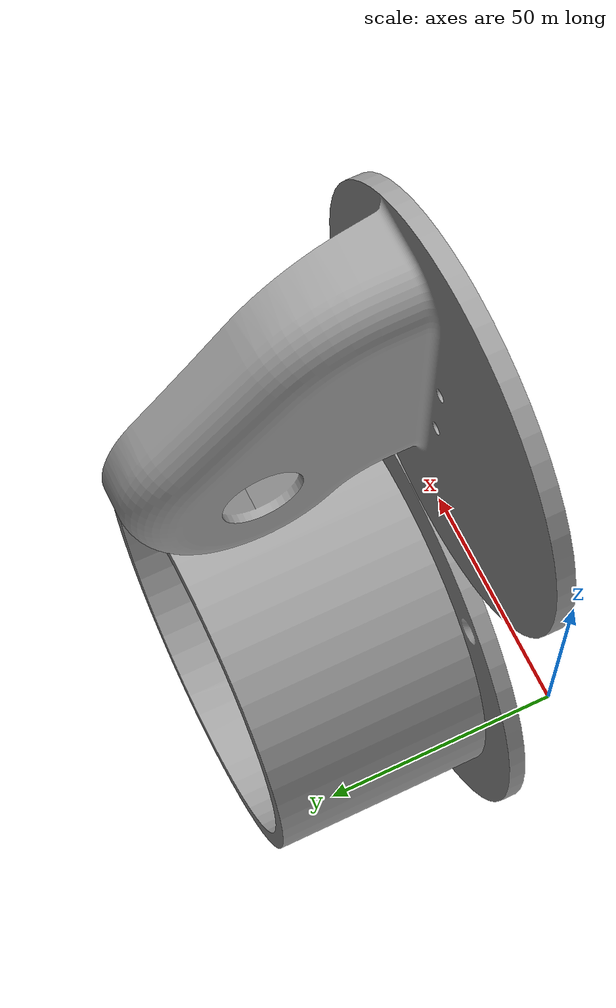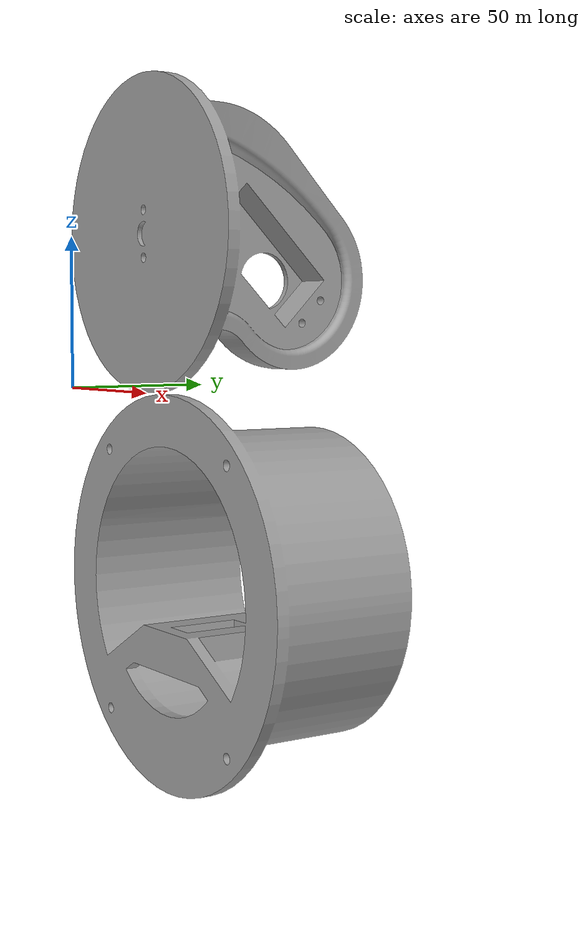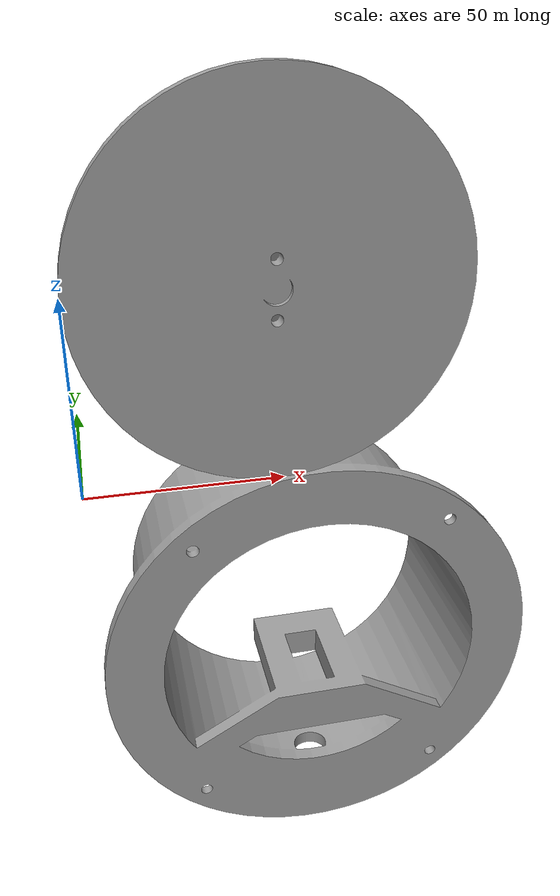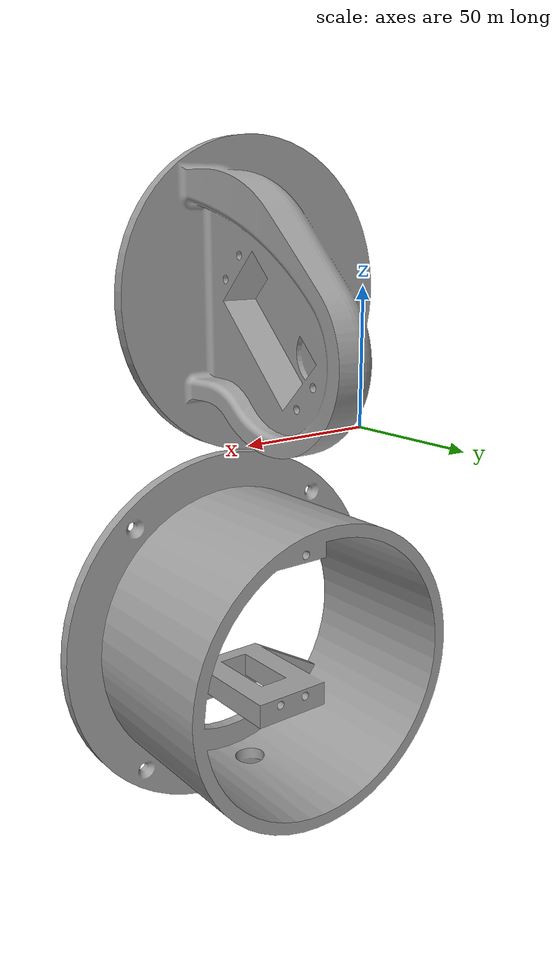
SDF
<?xml version="1.0" ?>
<!-- Generated using onshape-to-robot -->
<!-- Onshape document_id: dc649399d1e5c22b0b47fe9c -->
<sdf version="1.7">
  <model name="dumanjr">
    <!-- Link base -->
    <link name="base">
      <inertial>
        <pose>0.00140239 -0.0390551 0.026824 0 0 0</pose>
        <mass>1.99989</mass>
        <inertia>
          <ixx>0.00285053</ixx>
          <ixy>-7.11608e-10</ixy>
          <ixz>1.48443e-10</ixz>
          <iyy>0.0027243</iyy>
          <iyz>7.94782e-05</iyz>
          <izz>0.00434757</izz>
        </inertia>
      </inertial>
      <pose>0 0 0 0 -0 0</pose>
      <!-- Part base -->
      <visual name="base_visual_mesh_1">
        <pose relative_to="base">0.00140238 -0.0401521 0.00471794 -1.5708 -0 0</pose>
        <geometry>
          <mesh>
            <uri>model://duman_description/models/base.stl</uri>
          </mesh>
        </geometry>
        <material>
          <ambient>0.627451 0.627451 0.627451 1</ambient>
          <diffuse>0.627451 0.627451 0.627451 1</diffuse>
          <specular>0.1 0.1 0.1 1</specular>
          <emissive>0 0 0 0</emissive>
        </material>
      </visual>
      <collision name="base_collision_mesh_2">
        <pose relative_to="base">0.00140238 -0.0401521 0.00471794 -1.5708 -0 0</pose>
        <geometry>
          <mesh>
            <uri>model://duman_description/models/base.stl</uri>
          </mesh>
        </geometry>
      </collision>
    </link>
    <joint name="base_fixed_world" type="fixed">
      <parent>world</parent>
      <child>base</child>
    </joint>
    <!-- Link waist -->
    <link name="waist">
      <inertial>
        <pose>0.00749454 -0.00142948 -0.0193828 0 0 0</pose>
        <mass>0.0920595</mass>
        <inertia>
          <ixx>8.49408e-05</ixx>
          <ixy>3.1823e-07</ixy>
          <ixz>8.03715e-06</ixz>
          <iyy>6.28516e-05</iyy>
          <iyz>-8.4124e-06</iyz>
          <izz>7.51669e-05</izz>
        </inertia>
      </inertial>
      <pose relative_to="hip">0 0 0 0 -0 0</pose>
      <!-- Part waist -->
      <visual name="waist_visual_mesh_1">
        <pose relative_to="waist">0 0 6.93889e-18 3.14159 -9.5171e-34 -7.77831e-33</pose>
        <geometry>
          <mesh>
            <uri>model://duman_description/models/waist.stl</uri>
          </mesh>
        </geometry>
        <material>
          <ambient>0.627451 0.627451 0.627451 1</ambient>
          <diffuse>0.627451 0.627451 0.627451 1</diffuse>
          <specular>0.1 0.1 0.1 1</specular>
          <emissive>0 0 0 0</emissive>
        </material>
      </visual>
      <collision name="waist_collision_mesh_2">
        <pose relative_to="waist">0 0 6.93889e-18 3.14159 -9.5171e-34 -7.77831e-33</pose>
        <geometry>
          <mesh>
            <uri>model://duman_description/models/waist.stl</uri>
          </mesh>
        </geometry>
      </collision>
    </link>
    <!-- Link arm_01 -->
    <link name="arm_01">
      <inertial>
        <pose>1.41189e-07 0.0599998 -0.0077716 0 0 0</pose>
        <mass>0.0800817</mass>
        <inertia>
          <ixx>0.000129708</ixx>
          <ixy>6.23374e-10</ixy>
          <ixz>1.8766e-10</ixz>
          <iyy>1.15364e-05</iyy>
          <iyz>3.6199e-12</iyz>
          <izz>0.000135796</izz>
        </inertia>
      </inertial>
      <pose relative_to="shoulder">0 0 0 0 -0 0</pose>
      <!-- Part arm_01 -->
      <visual name="arm_01_visual_mesh_1">
        <pose relative_to="arm_01">0 0 -0.021 -1.5708 -0 0</pose>
        <geometry>
          <mesh>
            <uri>model://duman_description/models/arm_01.stl</uri>
          </mesh>
        </geometry>
        <material>
          <ambient>0.627451 0.627451 0.627451 1</ambient>
          <diffuse>0.627451 0.627451 0.627451 1</diffuse>
          <specular>0.1 0.1 0.1 1</specular>
          <emissive>0 0 0 0</emissive>
        </material>
      </visual>
      <collision name="arm_01_collision_mesh_2">
        <pose relative_to="arm_01">0 0 -0.021 -1.5708 -0 0</pose>
        <geometry>
          <mesh>
            <uri>model://duman_description/models/arm_01.stl</uri>
          </mesh>
        </geometry>
      </collision>
    </link>
    <!-- Link arm_02 -->
    <link name="arm_02">
      <inertial>
        <pose>0.041712 3.1608e-05 -0.00571994 0 0 0</pose>
        <mass>0.0588717</mass>
        <inertia>
          <ixx>1.09032e-05</ixx>
          <ixy>-8.66931e-08</ixy>
          <ixz>-5.03999e-07</ixz>
          <iyy>6.42501e-05</iyy>
          <iyz>-2.95898e-10</iyz>
          <izz>6.83293e-05</izz>
        </inertia>
      </inertial>
      <pose relative_to="elbow">0 0 0 0 -0 0</pose>
      <!-- Part arm_02 -->
      <visual name="arm_02_visual_mesh_1">
        <pose relative_to="arm_02">0.03475 0 0 1.5708 -5.82765e-33 8.38165e-31</pose>
        <geometry>
          <mesh>
            <uri>model://duman_description/models/arm_02.stl</uri>
          </mesh>
        </geometry>
        <material>
          <ambient>0.627451 0.627451 0.627451 1</ambient>
          <diffuse>0.627451 0.627451 0.627451 1</diffuse>
          <specular>0.1 0.1 0.1 1</specular>
          <emissive>0 0 0 0</emissive>
        </material>
      </visual>
      <collision name="arm_02_collision_mesh_2">
        <pose relative_to="arm_02">0.03475 0 0 1.5708 -5.82765e-33 8.38165e-31</pose>
        <geometry>
          <mesh>
            <uri>model://duman_description/models/arm_02.stl</uri>
          </mesh>
        </geometry>
      </collision>
    </link>
    <!-- Link arm_03 -->
    <link name="arm_03">
      <inertial>
        <pose>0.00504597 -0.00527098 -0.0178079 0 0 0</pose>
        <mass>0.0205879</mass>
        <inertia>
          <ixx>4.87479e-06</ixx>
          <ixy>-4.9857e-09</ixy>
          <ixz>-1.44426e-08</ixz>
          <iyy>6.25973e-06</iyy>
          <iyz>-7.21453e-07</iyz>
          <izz>3.26119e-06</izz>
        </inertia>
      </inertial>
      <pose relative_to="wrist_yaw">0 0 0 0 -0 0</pose>
      <!-- Part arm_03 -->
      <visual name="arm_03_visual_mesh_1">
        <pose relative_to="arm_03">0.005 0 0 3.14159 -1.15324e-32 -2.64041e-32</pose>
        <geometry>
          <mesh>
            <uri>model://duman_description/models/arm_03.stl</uri>
          </mesh>
        </geometry>
        <material>
          <ambient>0.627451 0.627451 0.627451 1</ambient>
          <diffuse>0.627451 0.627451 0.627451 1</diffuse>
          <specular>0.1 0.1 0.1 1</specular>
          <emissive>0 0 0 0</emissive>
        </material>
      </visual>
      <collision name="arm_03_collision_mesh_2">
        <pose relative_to="arm_03">0.005 0 0 3.14159 -1.15324e-32 -2.64041e-32</pose>
        <geometry>
          <mesh>
            <uri>model://duman_description/models/arm_03.stl</uri>
          </mesh>
        </geometry>
      </collision>
    </link>
    <!-- Link gripper_base -->
    <link name="gripper_base">
      <inertial>
        <pose>-0.0249279 0.00644035 0.00415755 0 0 0</pose>
        <mass>0.0200508</mass>
        <inertia>
          <ixx>4.12622e-06</ixx>
          <ixy>1.67598e-06</ixy>
          <ixz>2.23242e-06</ixz>
          <iyy>1.12602e-05</iyy>
          <iyz>-5.06163e-07</iyz>
          <izz>9.07212e-06</izz>
        </inertia>
      </inertial>
      <pose relative_to="wrist">0 0 0 0 -0 0</pose>
      <!-- Part gripper_base -->
      <visual name="gripper_base_visual_mesh_1">
        <pose relative_to="gripper_base">-0.0405 0.009 0.016 -1.5708 -1.5708 0</pose>
        <geometry>
          <mesh>
            <uri>model://duman_description/models/gripper_base.stl</uri>
          </mesh>
        </geometry>
        <material>
          <ambient>0.627451 0.627451 0.627451 1</ambient>
          <diffuse>0.627451 0.627451 0.627451 1</diffuse>
          <specular>0.1 0.1 0.1 1</specular>
          <emissive>0 0 0 0</emissive>
        </material>
      </visual>
      <collision name="gripper_base_collision_mesh_2">
        <pose relative_to="gripper_base">-0.0405 0.009 0.016 -1.5708 -1.5708 0</pose>
        <geometry>
          <mesh>
            <uri>model://duman_description/models/gripper_base.stl</uri>
          </mesh>
        </geometry>
      </collision>
    </link>
    <!-- Link part_1_gear_2 -->
    <link name="part_1_gear_2">
      <inertial>
        <pose>0.0055512 0.000581716 -0.002 0 0 0</pose>
        <mass>0.00322726</mass>
        <inertia>
          <ixx>1.12519e-07</ixx>
          <ixy>1.04215e-08</ixy>
          <ixz>5.72662e-39</ixz>
          <iyy>4.6086e-07</iyy>
          <iyz>-2.84694e-37</iyz>
          <izz>5.64773e-07</izz>
        </inertia>
      </inertial>
      <pose relative_to="grip1">0 0 0 0 -0 0</pose>
      <!-- Part part_1_gear_2 -->
      <visual name="part_1_gear_2_visual_mesh_1">
        <pose relative_to="part_1_gear_2">0 0 -0.002 -1.5708 -9.19794e-32 -2.46134e-30</pose>
        <geometry>
          <mesh>
            <uri>model://duman_description/models/part_1_gear_2.stl</uri>
          </mesh>
        </geometry>
        <material>
          <ambient>0.627451 0.627451 0.627451 1</ambient>
          <diffuse>0.627451 0.627451 0.627451 1</diffuse>
          <specular>0.1 0.1 0.1 1</specular>
          <emissive>0 0 0 0</emissive>
        </material>
      </visual>
      <collision name="part_1_gear_2_collision_mesh_2">
        <pose relative_to="part_1_gear_2">0 0 -0.002 -1.5708 -9.19794e-32 -2.46134e-30</pose>
        <geometry>
          <mesh>
            <uri>model://duman_description/models/part_1_gear_2.stl</uri>
          </mesh>
        </geometry>
      </collision>
    </link>
    <!-- Link gripper -->
    <link name="gripper">
      <inertial>
        <pose>0.0255267 -0.00336736 -0.00225 0 0 0</pose>
        <mass>0.00319331</mass>
        <inertia>
          <ixx>7.61928e-08</ixx>
          <ixy>1.94102e-07</ixy>
          <ixz>1.2539e-13</ixz>
          <iyy>9.47719e-07</iyy>
          <iyz>-1.62028e-13</iyz>
          <izz>1.01313e-06</izz>
        </inertia>
      </inertial>
      <pose relative_to="grip4">0 0 0 0 -0 0</pose>
      <!-- Part gripper -->
      <visual name="gripper_visual_mesh_1">
        <pose relative_to="gripper">0 1.38778e-17 0 -3.14159 -3.22792e-30 2.73328e-30</pose>
        <geometry>
          <mesh>
            <uri>model://duman_description/models/gripper.stl</uri>
          </mesh>
        </geometry>
        <material>
          <ambient>0.627451 0.627451 0.627451 1</ambient>
          <diffuse>0.627451 0.627451 0.627451 1</diffuse>
          <specular>0.1 0.1 0.1 1</specular>
          <emissive>0 0 0 0</emissive>
        </material>
      </visual>
      <collision name="gripper_collision_mesh_2">
        <pose relative_to="gripper">0 1.38778e-17 0 -3.14159 -3.22792e-30 2.73328e-30</pose>
        <geometry>
          <mesh>
            <uri>model://duman_description/models/gripper.stl</uri>
          </mesh>
        </geometry>
      </collision>
    </link>
    <!-- Joint from part_1_gear_2 to gripper -->
    <joint name="grip4" type="revolute">
      <pose relative_to="part_1_gear_2">0.03075 0 -0.004 1.71639e-15 -3.30798e-14 1.39819e-15</pose>
      <parent>part_1_gear_2</parent>
      <child>gripper</child>
      <axis>
        <xyz>0 0 1</xyz>
        <limit>
          <effort>10</effort>
          <velocity>10</velocity>
          <lower>-3.141592653589793</lower>
          <upper>3.141592653589793</upper>
        </limit>
        <dynamics>
          <friction>0.0</friction>
          <damping>0.0</damping>
        </dynamics>
      </axis>
    </joint>
    <!-- Joint from gripper_base to part_1_gear_2 -->
    <joint name="grip1" type="revolute">
      <pose relative_to="gripper_base">-0.038 0.014 0.0179 -1.5708 -1.39819e-15 3.14159</pose>
      <parent>gripper_base</parent>
      <child>part_1_gear_2</child>
      <axis>
        <xyz>0 0 1</xyz>
        <limit>
          <effort>10</effort>
          <velocity>10</velocity>
          <lower>-3.141592653589793</lower>
          <upper>3.141592653589793</upper>
        </limit>
        <dynamics>
          <friction>0.0</friction>
          <damping>0.0</damping>
        </dynamics>
      </axis>
    </joint>
    <!-- Link part_2_gear_2 -->
    <link name="part_2_gear_2">
      <inertial>
        <pose>0.00539171 -0.000565002 -0.002 0 0 0</pose>
        <mass>0.00332273</mass>
        <inertia>
          <ixx>1.12793e-07</ixx>
          <ixy>-1.01221e-08</ixy>
          <ixz>-3.19661e-39</ixz>
          <iyy>4.65036e-07</iyy>
          <iyz>8.4684e-38</iyz>
          <izz>5.68969e-07</izz>
        </inertia>
      </inertial>
      <pose relative_to="grip2">0 0 0 0 -0 0</pose>
      <!-- Part part_2_gear_2 -->
      <visual name="part_2_gear_2_visual_mesh_1">
        <pose relative_to="part_2_gear_2">0 0 -0.002 1.5708 -2.48157e-33 -8.99409e-30</pose>
        <geometry>
          <mesh>
            <uri>model://duman_description/models/part_2_gear_2.stl</uri>
          </mesh>
        </geometry>
        <material>
          <ambient>0.627451 0.627451 0.627451 1</ambient>
          <diffuse>0.627451 0.627451 0.627451 1</diffuse>
          <specular>0.1 0.1 0.1 1</specular>
          <emissive>0 0 0 0</emissive>
        </material>
      </visual>
      <collision name="part_2_gear_2_collision_mesh_2">
        <pose relative_to="part_2_gear_2">0 0 -0.002 1.5708 -2.48157e-33 -8.99409e-30</pose>
        <geometry>
          <mesh>
            <uri>model://duman_description/models/part_2_gear_2.stl</uri>
          </mesh>
        </geometry>
      </collision>
    </link>
    <!-- Link gripper_2 -->
    <link name="gripper_2">
      <inertial>
        <pose>0.0255267 0.00336736 -0.00225 0 0 0</pose>
        <mass>0.00319331</mass>
        <inertia>
          <ixx>7.61928e-08</ixx>
          <ixy>-1.94102e-07</ixy>
          <ixz>-1.2539e-13</ixz>
          <iyy>9.47719e-07</iyy>
          <iyz>-1.62028e-13</iyz>
          <izz>1.01313e-06</izz>
        </inertia>
      </inertial>
      <pose relative_to="grip3">0 0 0 0 -0 0</pose>
      <!-- Part gripper_2 -->
      <visual name="gripper_2_visual_mesh_1">
        <pose relative_to="gripper_2">0 0 -0.0045 2.70946e-31 -8.33172e-31 3.03064e-30</pose>
        <geometry>
          <mesh>
            <uri>model://duman_description/models/gripper.stl</uri>
          </mesh>
        </geometry>
        <material>
          <ambient>0.627451 0.627451 0.627451 1</ambient>
          <diffuse>0.627451 0.627451 0.627451 1</diffuse>
          <specular>0.1 0.1 0.1 1</specular>
          <emissive>0 0 0 0</emissive>
        </material>
      </visual>
      <collision name="gripper_2_collision_mesh_2">
        <pose relative_to="gripper_2">0 0 -0.0045 2.70946e-31 -8.33172e-31 3.03064e-30</pose>
        <geometry>
          <mesh>
            <uri>model://duman_description/models/gripper.stl</uri>
          </mesh>
        </geometry>
      </collision>
    </link>
    <!-- Joint from part_2_gear_2 to gripper_2 -->
    <joint name="grip3" type="revolute">
      <pose relative_to="part_2_gear_2">0.03075 0 -0.004 -5.14918e-15 1.10266e-14 1.39819e-15</pose>
      <parent>part_2_gear_2</parent>
      <child>gripper_2</child>
      <axis>
        <xyz>0 0 1</xyz>
        <limit>
          <effort>10</effort>
          <velocity>10</velocity>
          <lower>-3.141592653589793</lower>
          <upper>3.141592653589793</upper>
        </limit>
        <dynamics>
          <friction>0.0</friction>
          <damping>0.0</damping>
        </dynamics>
      </axis>
    </joint>
    <!-- Joint from gripper_base to part_2_gear_2 -->
    <joint name="grip2" type="revolute">
      <pose relative_to="gripper_base">-0.038 0.014 -0.009 -1.5708 -8.99409e-30 3.14159</pose>
      <parent>gripper_base</parent>
      <child>part_2_gear_2</child>
      <axis>
        <xyz>0 0 1</xyz>
        <limit>
          <effort>10</effort>
          <velocity>10</velocity>
          <lower>-3.141592653589793</lower>
          <upper>3.141592653589793</upper>
        </limit>
        <dynamics>
          <friction>0.0</friction>
          <damping>0.0</damping>
        </dynamics>
      </axis>
    </joint>
    <!-- Joint from arm_03 to gripper_base -->
    <joint name="wrist" type="revolute">
      <pose relative_to="arm_03">0.005 -0.014 -0.028 -1.5708 -1.5708 0</pose>
      <parent>arm_03</parent>
      <child>gripper_base</child>
      <axis>
        <xyz>0 0 1</xyz>
        <limit>
          <effort>10</effort>
          <velocity>10</velocity>
          <lower>-3.141592653589793</lower>
          <upper>3.141592653589793</upper>
        </limit>
        <dynamics>
          <friction>0.0</friction>
          <damping>0.0</damping>
        </dynamics>
      </axis>
    </joint>
    <!-- Joint from arm_02 to arm_03 -->
    <joint name="wrist_yaw" type="revolute">
      <pose relative_to="arm_02">0.08975 -0.0053 -0.0055 -3.14159 1.5708 0</pose>
      <parent>arm_02</parent>
      <child>arm_03</child>
      <axis>
        <xyz>0 0 1</xyz>
        <limit>
          <effort>10</effort>
          <velocity>10</velocity>
          <lower>-3.141592653589793</lower>
          <upper>3.141592653589793</upper>
        </limit>
        <dynamics>
          <friction>0.0</friction>
          <damping>0.0</damping>
        </dynamics>
      </axis>
    </joint>
    <!-- Joint from arm_01 to arm_02 -->
    <joint name="elbow" type="revolute">
      <pose relative_to="arm_01">-2.77556e-17 0.12 6.93889e-18 -3.14159 1.13013e-16 1.5708</pose>
      <parent>arm_01</parent>
      <child>arm_02</child>
      <axis>
        <xyz>0 0 1</xyz>
        <limit>
          <effort>10</effort>
          <velocity>10</velocity>
          <lower>-3.141592653589793</lower>
          <upper>3.141592653589793</upper>
        </limit>
        <dynamics>
          <friction>0.0</friction>
          <damping>0.0</damping>
        </dynamics>
      </axis>
    </joint>
    <!-- Joint from waist to arm_01 -->
    <joint name="shoulder" type="revolute">
      <pose relative_to="waist">0.004 -0.01391 -0.04028 3.14159 -1.5708 0</pose>
      <parent>waist</parent>
      <child>arm_01</child>
      <axis>
        <xyz>0 0 1</xyz>
        <limit>
          <effort>10</effort>
          <velocity>10</velocity>
          <lower>-3.141592653589793</lower>
          <upper>3.141592653589793</upper>
        </limit>
        <dynamics>
          <friction>0.0</friction>
          <damping>0.0</damping>
        </dynamics>
      </axis>
    </joint>
    <!-- Joint from base to waist -->
    <joint name="hip" type="revolute">
      <pose relative_to="base">0.00140238 -0.0401521 0.0607179 3.14159 2.41954e-17 1.38778e-16</pose>
      <parent>base</parent>
      <child>waist</child>
      <axis>
        <xyz>0 0 1</xyz>
        <limit>
          <effort>10</effort>
          <velocity>10</velocity>
          <lower>-3.141592653589793</lower>
          <upper>3.141592653589793</upper>
        </limit>
        <dynamics>
          <friction>0.0</friction>
          <damping>0.0</damping>
        </dynamics>
      </axis>
    </joint>
  </model>
</sdf>
